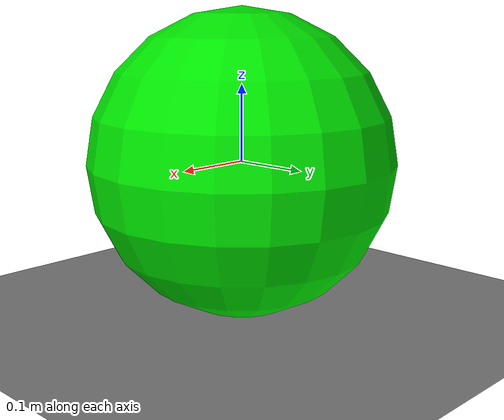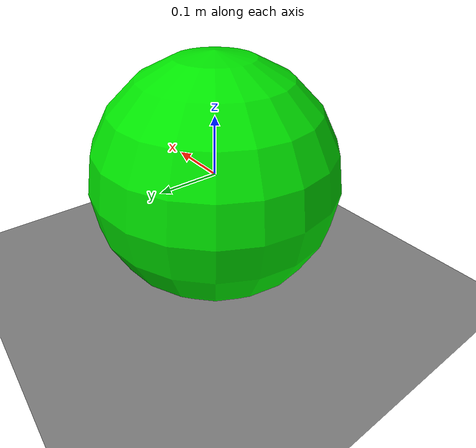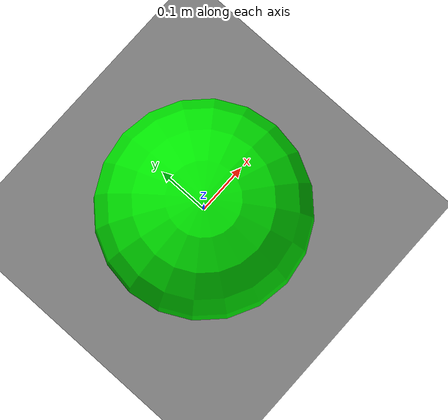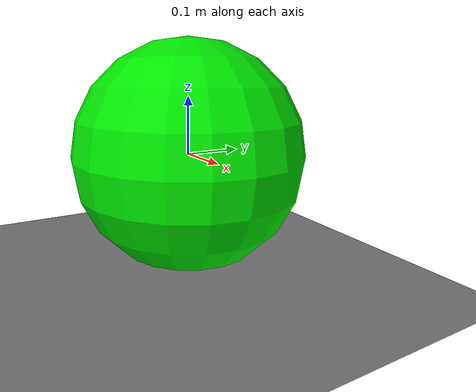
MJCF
<mujoco>
    <option gravity="0 0 0" timestep="0.01"/>
    <worldbody>
        <geom name='floor' pos='0 0 -0.2' size='5 5 .125' type='plane' condim='3'/>
        <body name="ball" pos="0 0 0">
            <light diffuse="1.5 1.5 1.5" pos="0 0 2" dir="0 0 -1" mode="track"/>
            <joint axis="1 0 0" damping="0" name="slide0" pos="0 0 0" type="slide"/>
            <joint axis="0 1 0" damping="0" name="slide1" pos="0 0 0" type="slide"/>
            <joint axis="0 0 1" damping="0" name="slide2" pos="0 0 0" type="slide"/>
            <geom type="sphere" size="0.2" mass="1" rgba="0 .9 0 1"/>
        </body>

        <!-- add obstacle below as you want -->

    </worldbody>
    <actuator>
        <motor gear="1" joint="slide0"/>
        <motor gear="1" joint="slide1"/>
        <motor gear="1" joint="slide2"/>
    </actuator>
</mujoco>
